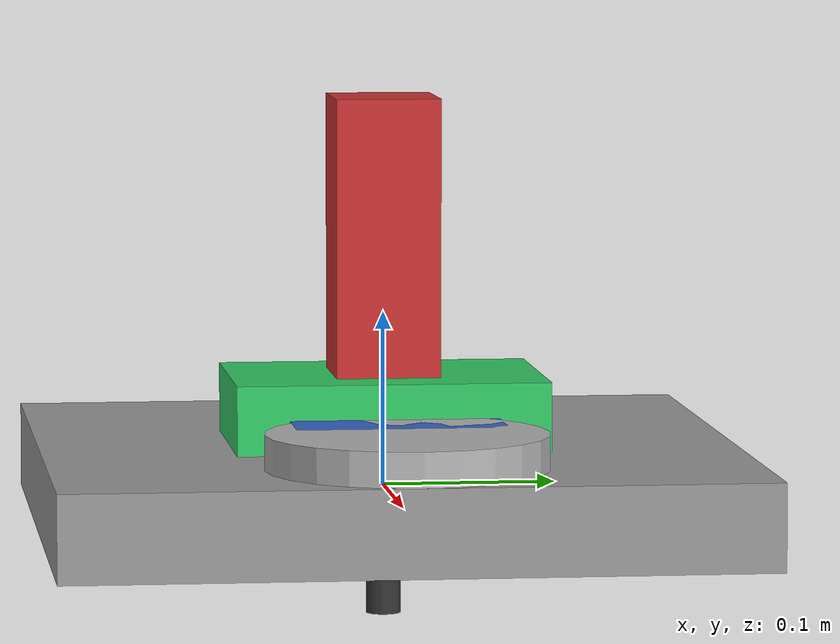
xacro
<?xml version="1.0"?>
<!-- Simple Xacro model for 4-axis drilling machine: X (prismatic), Y (prismatic), Z (prismatic), A (revolute)
     This is a minimal model intended for ros2_control + Gazebo simulation PoC.
-->
<robot xmlns:xacro="http://ros.org/wiki/xacro" name="drill_machine">
  <xacro:property name="prefix" value=""/>

  <!-- Base link -->
  <link name="${prefix}base_link">
    <visual>
      <geometry>
        <box size="0.4 0.4 0.05"/>
      </geometry>
      <material name="gray"><color rgba="0.6 0.6 0.6 1.0"/></material>
    </visual>
    <inertial>
      <mass value="5.0"/>
      <inertia ixx="0.01" ixy="0.0" ixz="0.0" iyy="0.01" iyz="0.0" izz="0.01"/>
    </inertial>
  </link>

  <!-- X axis carriage -->
  <link name="${prefix}x_carriage">
    <visual>
      <geometry><box size="0.2 0.12 0.04"/></geometry>
      <material name="blue"><color rgba="0.2 0.4 0.8 1.0"/></material>
    </visual>
  </link>

  <joint name="${prefix}x_axis_joint" type="prismatic">
    <parent link="${prefix}base_link"/>
    <child link="${prefix}x_carriage"/>
    <origin xyz="0 0 0.025" rpy="0 0 0"/>
    <axis xyz="1 0 0"/>
    <limit lower="-0.15" upper="0.15" effort="1000" velocity="0.5"/>
  </joint>

  <!-- Y axis carriage (mounted on X carriage) -->
  <link name="${prefix}y_carriage">
    <visual>
      <geometry><box size="0.12 0.18 0.04"/></geometry>
      <material name="green"><color rgba="0.2 0.8 0.4 1.0"/></material>
    </visual>
  </link>

  <joint name="${prefix}y_axis_joint" type="prismatic">
    <parent link="${prefix}x_carriage"/>
    <child link="${prefix}y_carriage"/>
    <origin xyz="0 0 0.02" rpy="0 0 0"/>
    <axis xyz="0 1 0"/>
    <limit lower="-0.1" upper="0.1" effort="1000" velocity="0.5"/>
  </joint>

  <!-- Z axis (spindle head) -->
  <link name="${prefix}z_carriage">
    <visual>
      <geometry><box size="0.06 0.06 0.18"/></geometry>
      <material name="red"><color rgba="0.8 0.2 0.2 1.0"/></material>
    </visual>
  </link>

  <joint name="${prefix}z_axis_joint" type="prismatic">
    <parent link="${prefix}y_carriage"/>
    <child link="${prefix}z_carriage"/>
    <origin xyz="0 0 0.09" rpy="0 0 0"/>
    <axis xyz="0 0 1"/>
    <limit lower="-0.15" upper="0.05" effort="1000" velocity="0.3"/>
  </joint>

  <!-- A axis (rotary table) attached to base as a separate branch representing the rotating workpiece -->
  <link name="${prefix}a_table">
    <visual>
      <geometry>
        <cylinder radius="0.08" length="0.02"/>
      </geometry>
      <material name="metal"><color rgba="0.7 0.7 0.7 1.0"/></material>
    </visual>
    <inertial>
      <mass value="2.0"/>
      <inertia ixx="0.001" ixy="0.0" ixz="0.0" iyy="0.001" iyz="0.0" izz="0.001"/>
    </inertial>
  </link>

  <joint name="${prefix}a_axis_joint" type="revolute">
    <parent link="${prefix}base_link"/>
    <child link="${prefix}a_table"/>
    <origin xyz="0.12 0 0.035" rpy="0 0 0"/>
    <axis xyz="0 0 1"/>
    <limit lower="-3.1416" upper="3.1416" effort="200" velocity="3.14"/>
  </joint>

  <!-- tool link (drill) mounted on z_carriage -->
  <link name="${prefix}tool_link">
    <visual>
      <geometry><cylinder radius="0.01" length="0.12"/></geometry>
      <origin xyz="0 0 -0.06" rpy="0 0 0"/>
      <material name="toolcol"><color rgba="0.2 0.2 0.2 1.0"/></material>
    </visual>
  </link>

  <joint name="${prefix}tool_fixed_joint" type="fixed">
    <parent link="${prefix}z_carriage"/>
    <child link="${prefix}tool_link"/>
    <origin xyz="0 0 -0.09" rpy="0 0 0"/>
  </joint>

  <!-- transmissions / ros2_control hardware tags -->
  <xacro:macro name="ros2_control_transmission" params="joint name">
    <transmission name="${joint}_trans">
      <type>transmission_interface/SimpleTransmission</type>
      <joint name="${joint}">
        <hardwareInterface>position</hardwareInterface>
      </joint>
      <actuator name="${joint}_motor">
        <hardwareInterface>position</hardwareInterface>
        <mechanicalReduction>1</mechanicalReduction>
      </actuator>
    </transmission>
  </xacro:macro>

  <!-- Add transmissions for joints -->
  <xacro:ros2_control_transmission joint="${prefix}x_axis_joint"/>
  <xacro:ros2_control_transmission joint="${prefix}y_axis_joint"/>
  <xacro:ros2_control_transmission joint="${prefix}z_axis_joint"/>
  <xacro:ros2_control_transmission joint="${prefix}a_axis_joint"/>

</robot>
